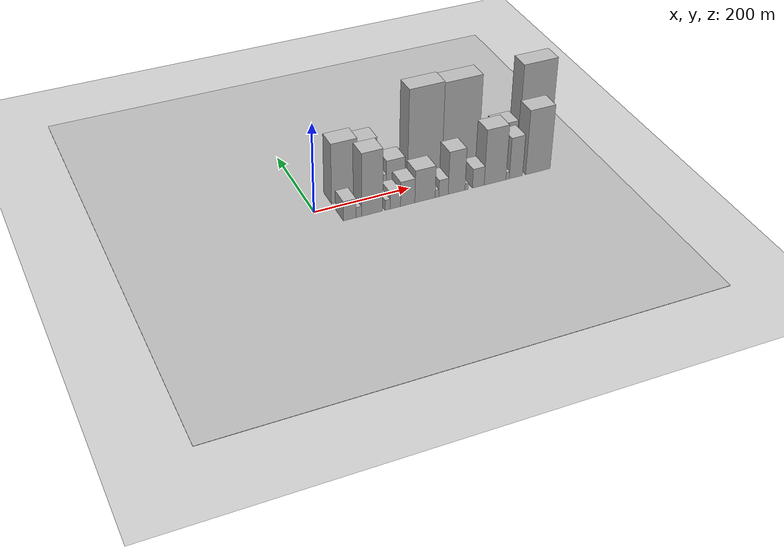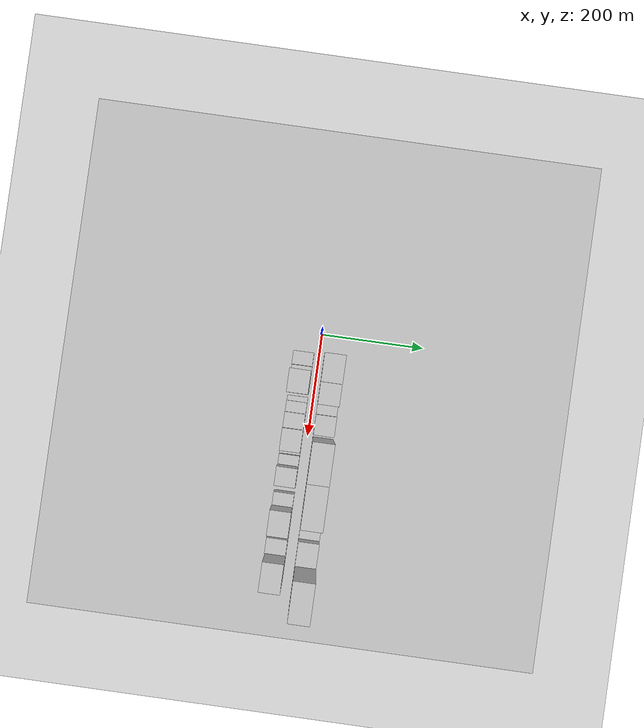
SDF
<?xml version="1.0" encoding="utf-8"?>

<sdf version="1.6">

   <world name="default">

      <gui fullscreen="0">

         <camera name="user_camera">

            <pose>-15 0 4.57585 0 0 0</pose>

            <view_controller>orbit</view_controller>

         </camera>

      </gui>

      <scene>

         <sky>

           <clouds>

             <speed>12</speed>

           </clouds>

         </sky>

         <ambient>0.4 0.4 0.4 1</ambient>

         <background>0.7 0.7 0.7 1</background>

         <shadows>1</shadows>

      </scene>

      <gravity>0 0 -9.8066</gravity>

      <magnetic_field>6e-06 2.3e-05 -4.2e-05</magnetic_field>

      <physics default="0" name="default_physics" type="ode">

         <ode>

            <solver>

               <type>quick</type>

               <iters>10</iters>

               <sor>1.0</sor>

               <use_dynamic_moi_rescaling>0</use_dynamic_moi_rescaling>

            </solver>

            <constraints>

               <cfm>0</cfm>

               <erp>0.2</erp>

               <contact_max_correcting_vel>100</contact_max_correcting_vel>

               <contact_surface_layer>0.001</contact_surface_layer>

            </constraints>

         </ode>

         <max_step_size>0.004</max_step_size>

         <real_time_factor>1</real_time_factor>

         <real_time_update_rate>250</real_time_update_rate>

      </physics>

      <light name="sun" type="directional">

         <cast_shadows>1</cast_shadows>

         <pose>0 0 10 0 0 0</pose>

         <diffuse>0.8 0.8 0.8 1</diffuse>

         <specular>0.2 0.2 0.2 1</specular>

         <attenuation>

            <range>1000</range>

            <constant>0.9</constant>

            <linear>0.01</linear>

            <quadratic>0.001</quadratic>

         </attenuation>

         <direction>-0.5 0.1 -0.9</direction>

      </light>

      <include>

         <name>ground_plane_1</name>

         <uri>model://HANNAS_ground_plane</uri>

         <pose>0 0 0  0 0 0</pose>

      </include>

      <include>

         <name>ground_plane_2</name>

         <uri>model://HANNAS_ground_plane</uri>

         <pose>100 0 0  0 0 0</pose>

      </include>

      <model name="building_1">

         <static>1</static>

         <pose frame="">66.9440 30.0000 0 0.000000 0.000000 1.570796</pose>

         <link name="link">

            <pose frame="">0 0 69.00 0 0 0</pose>

            <collision name="collision">

               <geometry>

                  <box>

                     <size>40.0000 53.8881 138.0000</size>

                  </box>

               </geometry>

               <max_contacts>10</max_contacts>

               <surface>

                  <contact>

                     <ode/>

                  </contact>

                  <bounce/>

                  <friction>

                     <torsional>

                        <ode/>

                     </torsional>

                     <ode/>

                  </friction>

               </surface>

            </collision>

            <visual name="visual">

               <cast_shadows>0</cast_shadows>

               <geometry>

                  <box>

                     <size>40.0000 53.8881 138.0000</size>

                  </box>

               </geometry>

               <material>

                  <script>

                     <uri>model://HANNAS_wall/materials/scripts</uri>

                     <uri>model://HANNAS_wall/materials/textures</uri>

                     <name>vrc/HANNAS_wall</name>

                  </script>

               </material>

            </visual>

            <self_collide>0</self_collide>

            <enable_wind>0</enable_wind>

            <kinematic>0</kinematic>

         </link>

      </model>

      <model name="building_2">

         <static>1</static>

         <pose frame="">114.7403 30.0000 0 0.000000 0.000000 1.570796</pose>

         <link name="link">

            <pose frame="">0 0 64.50 0 0 0</pose>

            <collision name="collision">

               <geometry>

                  <box>

                     <size>40.0000 41.7045 129.0000</size>

                  </box>

               </geometry>

               <max_contacts>10</max_contacts>

               <surface>

                  <contact>

                     <ode/>

                  </contact>

                  <bounce/>

                  <friction>

                     <torsional>

                        <ode/>

                     </torsional>

                     <ode/>

                  </friction>

               </surface>

            </collision>

            <visual name="visual">

               <cast_shadows>0</cast_shadows>

               <geometry>

                  <box>

                     <size>40.0000 41.7045 129.0000</size>

                  </box>

               </geometry>

               <material>

                  <script>

                     <uri>model://HANNAS_wall/materials/scripts</uri>

                     <uri>model://HANNAS_wall/materials/textures</uri>

                     <name>vrc/HANNAS_wall</name>

                  </script>

               </material>

            </visual>

            <self_collide>0</self_collide>

            <enable_wind>0</enable_wind>

            <kinematic>0</kinematic>

         </link>

      </model>

      <model name="building_3">

         <static>1</static>

         <pose frame="">145.5895 30.0000 0 0.000000 0.000000 1.570796</pose>

         <link name="link">

            <pose frame="">0 0 19.50 0 0 0</pose>

            <collision name="collision">

               <geometry>

                  <box>

                     <size>40.0000 19.9938 39.0000</size>

                  </box>

               </geometry>

               <max_contacts>10</max_contacts>

               <surface>

                  <contact>

                     <ode/>

                  </contact>

                  <bounce/>

                  <friction>

                     <torsional>

                        <ode/>

                     </torsional>

                     <ode/>

                  </friction>

               </surface>

            </collision>

            <visual name="visual">

               <cast_shadows>0</cast_shadows>

               <geometry>

                  <box>

                     <size>40.0000 19.9938 39.0000</size>

                  </box>

               </geometry>

               <material>

                  <script>

                     <uri>model://HANNAS_wall/materials/scripts</uri>

                     <uri>model://HANNAS_wall/materials/textures</uri>

                     <name>vrc/HANNAS_wall</name>

                  </script>

               </material>

            </visual>

            <self_collide>0</self_collide>

            <enable_wind>0</enable_wind>

            <kinematic>0</kinematic>

         </link>

      </model>

      <model name="building_4">

         <static>1</static>

         <pose frame="">175.2585 30.0000 0 0.000000 0.000000 1.570796</pose>

         <link name="link">

            <pose frame="">0 0 34.50 0 0 0</pose>

            <collision name="collision">

               <geometry>

                  <box>

                     <size>40.0000 39.3444 69.0000</size>

                  </box>

               </geometry>

               <max_contacts>10</max_contacts>

               <surface>

                  <contact>

                     <ode/>

                  </contact>

                  <bounce/>

                  <friction>

                     <torsional>

                        <ode/>

                     </torsional>

                     <ode/>

                  </friction>

               </surface>

            </collision>

            <visual name="visual">

               <cast_shadows>0</cast_shadows>

               <geometry>

                  <box>

                     <size>40.0000 39.3444 69.0000</size>

                  </box>

               </geometry>

               <material>

                  <script>

                     <uri>model://HANNAS_wall/materials/scripts</uri>

                     <uri>model://HANNAS_wall/materials/textures</uri>

                     <name>vrc/HANNAS_wall</name>

                  </script>

               </material>

            </visual>

            <self_collide>0</self_collide>

            <enable_wind>0</enable_wind>

            <kinematic>0</kinematic>

         </link>

      </model>

      <model name="building_5">

         <static>1</static>

         <pose frame="">238.2766 30.0000 0 0.000000 0.000000 1.570796</pose>

         <link name="link">

            <pose frame="">0 0 109.50 0 0 0</pose>

            <collision name="collision">

               <geometry>

                  <box>

                     <size>40.0000 74.6918 219.0000</size>

                  </box>

               </geometry>

               <max_contacts>10</max_contacts>

               <surface>

                  <contact>

                     <ode/>

                  </contact>

                  <bounce/>

                  <friction>

                     <torsional>

                        <ode/>

                     </torsional>

                     <ode/>

                  </friction>

               </surface>

            </collision>

            <visual name="visual">

               <cast_shadows>0</cast_shadows>

               <geometry>

                  <box>

                     <size>40.0000 74.6918 219.0000</size>

                  </box>

               </geometry>

               <material>

                  <script>

                     <uri>model://HANNAS_wall/materials/scripts</uri>

                     <uri>model://HANNAS_wall/materials/textures</uri>

                     <name>vrc/HANNAS_wall</name>

                  </script>

               </material>

            </visual>

            <self_collide>0</self_collide>

            <enable_wind>0</enable_wind>

            <kinematic>0</kinematic>

         </link>

      </model>

      <model name="building_6">

         <static>1</static>

         <pose frame="">316.1250 30.0000 0 0.000000 0.000000 1.570796</pose>

         <link name="link">

            <pose frame="">0 0 108.00 0 0 0</pose>

            <collision name="collision">

               <geometry>

                  <box>

                     <size>40.0000 81.0050 216.0000</size>

                  </box>

               </geometry>

               <max_contacts>10</max_contacts>

               <surface>

                  <contact>

                     <ode/>

                  </contact>

                  <bounce/>

                  <friction>

                     <torsional>

                        <ode/>

                     </torsional>

                     <ode/>

                  </friction>

               </surface>

            </collision>

            <visual name="visual">

               <cast_shadows>0</cast_shadows>

               <geometry>

                  <box>

                     <size>40.0000 81.0050 216.0000</size>

                  </box>

               </geometry>

               <material>

                  <script>

                     <uri>model://HANNAS_wall/materials/scripts</uri>

                     <uri>model://HANNAS_wall/materials/textures</uri>

                     <name>vrc/HANNAS_wall</name>

                  </script>

               </material>

            </visual>

            <self_collide>0</self_collide>

            <enable_wind>0</enable_wind>

            <kinematic>0</kinematic>

         </link>

      </model>

      <model name="building_7">

         <static>1</static>

         <pose frame="">380.4439 30.0000 0 0.000000 0.000000 1.570796</pose>

         <link name="link">

            <pose frame="">0 0 25.50 0 0 0</pose>

            <collision name="collision">

               <geometry>

                  <box>

                     <size>40.0000 29.6328 51.0000</size>

                  </box>

               </geometry>

               <max_contacts>10</max_contacts>

               <surface>

                  <contact>

                     <ode/>

                  </contact>

                  <bounce/>

                  <friction>

                     <torsional>

                        <ode/>

                     </torsional>

                     <ode/>

                  </friction>

               </surface>

            </collision>

            <visual name="visual">

               <cast_shadows>0</cast_shadows>

               <geometry>

                  <box>

                     <size>40.0000 29.6328 51.0000</size>

                  </box>

               </geometry>

               <material>

                  <script>

                     <uri>model://HANNAS_wall/materials/scripts</uri>

                     <uri>model://HANNAS_wall/materials/textures</uri>

                     <name>vrc/HANNAS_wall</name>

                  </script>

               </material>

            </visual>

            <self_collide>0</self_collide>

            <enable_wind>0</enable_wind>

            <kinematic>0</kinematic>

         </link>

      </model>

      <model name="building_8">

         <static>1</static>

         <pose frame="">418.5278 30.0000 0 0.000000 0.000000 1.570796</pose>

         <link name="link">

            <pose frame="">0 0 45.00 0 0 0</pose>

            <collision name="collision">

               <geometry>

                  <box>

                     <size>40.0000 46.5349 90.0000</size>

                  </box>

               </geometry>

               <max_contacts>10</max_contacts>

               <surface>

                  <contact>

                     <ode/>

                  </contact>

                  <bounce/>

                  <friction>

                     <torsional>

                        <ode/>

                     </torsional>

                     <ode/>

                  </friction>

               </surface>

            </collision>

            <visual name="visual">

               <cast_shadows>0</cast_shadows>

               <geometry>

                  <box>

                     <size>40.0000 46.5349 90.0000</size>

                  </box>

               </geometry>

               <material>

                  <script>

                     <uri>model://HANNAS_wall/materials/scripts</uri>

                     <uri>model://HANNAS_wall/materials/textures</uri>

                     <name>vrc/HANNAS_wall</name>

                  </script>

               </material>

            </visual>

            <self_collide>0</self_collide>

            <enable_wind>0</enable_wind>

            <kinematic>0</kinematic>

         </link>

      </model>

      <model name="building_9">

         <static>1</static>

         <pose frame="">483.3286 30.0000 0 0.000000 0.000000 1.570796</pose>

         <link name="link">

            <pose frame="">0 0 108.00 0 0 0</pose>

            <collision name="collision">

               <geometry>

                  <box>

                     <size>40.0000 75.0668 216.0000</size>

                  </box>

               </geometry>

               <max_contacts>10</max_contacts>

               <surface>

                  <contact>

                     <ode/>

                  </contact>

                  <bounce/>

                  <friction>

                     <torsional>

                        <ode/>

                     </torsional>

                     <ode/>

                  </friction>

               </surface>

            </collision>

            <visual name="visual">

               <cast_shadows>0</cast_shadows>

               <geometry>

                  <box>

                     <size>40.0000 75.0668 216.0000</size>

                  </box>

               </geometry>

               <material>

                  <script>

                     <uri>model://HANNAS_wall/materials/scripts</uri>

                     <uri>model://HANNAS_wall/materials/textures</uri>

                     <name>vrc/HANNAS_wall</name>

                  </script>

               </material>

            </visual>

            <self_collide>0</self_collide>

            <enable_wind>0</enable_wind>

            <kinematic>0</kinematic>

         </link>

      </model>

      <model name="building_10">

         <static>1</static>

         <pose frame="">53.2304 -30.0000 0 0.000000 0.000000 1.570796</pose>

         <link name="link">

            <pose frame="">0 0 22.50 0 0 0</pose>

            <collision name="collision">

               <geometry>

                  <box>

                     <size>40.0000 26.4608 45.0000</size>

                  </box>

               </geometry>

               <max_contacts>10</max_contacts>

               <surface>

                  <contact>

                     <ode/>

                  </contact>

                  <bounce/>

                  <friction>

                     <torsional>

                        <ode/>

                     </torsional>

                     <ode/>

                  </friction>

               </surface>

            </collision>

            <visual name="visual">

               <cast_shadows>0</cast_shadows>

               <geometry>

                  <box>

                     <size>40.0000 26.4608 45.0000</size>

                  </box>

               </geometry>

               <material>

                  <script>

                     <uri>model://HANNAS_wall/materials/scripts</uri>

                     <uri>model://HANNAS_wall/materials/textures</uri>

                     <name>vrc/HANNAS_wall</name>

                  </script>

               </material>

            </visual>

            <self_collide>0</self_collide>

            <enable_wind>0</enable_wind>

            <kinematic>0</kinematic>

         </link>

      </model>

      <model name="building_11">

         <static>1</static>

         <pose frame="">71.6783 -30.0000 0 0.000000 0.000000 1.570796</pose>

         <link name="link">

            <pose frame="">0 0 12.00 0 0 0</pose>

            <collision name="collision">

               <geometry>

                  <box>

                     <size>40.0000 10.4350 24.0000</size>

                  </box>

               </geometry>

               <max_contacts>10</max_contacts>

               <surface>

                  <contact>

                     <ode/>

                  </contact>

                  <bounce/>

                  <friction>

                     <torsional>

                        <ode/>

                     </torsional>

                     <ode/>

                  </friction>

               </surface>

            </collision>

            <visual name="visual">

               <cast_shadows>0</cast_shadows>

               <geometry>

                  <box>

                     <size>40.0000 10.4350 24.0000</size>

                  </box>

               </geometry>

               <material>

                  <script>

                     <uri>model://HANNAS_wall/materials/scripts</uri>

                     <uri>model://HANNAS_wall/materials/textures</uri>

                     <name>vrc/HANNAS_wall</name>

                  </script>

               </material>

            </visual>

            <self_collide>0</self_collide>

            <enable_wind>0</enable_wind>

            <kinematic>0</kinematic>

         </link>

      </model>

      <model name="building_12">

         <static>1</static>

         <pose frame="">99.0378 -30.0000 0 0.000000 0.000000 1.570796</pose>

         <link name="link">

            <pose frame="">0 0 72.00 0 0 0</pose>

            <collision name="collision">

               <geometry>

                  <box>

                     <size>40.0000 44.2841 144.0000</size>

                  </box>

               </geometry>

               <max_contacts>10</max_contacts>

               <surface>

                  <contact>

                     <ode/>

                  </contact>

                  <bounce/>

                  <friction>

                     <torsional>

                        <ode/>

                     </torsional>

                     <ode/>

                  </friction>

               </surface>

            </collision>

            <visual name="visual">

               <cast_shadows>0</cast_shadows>

               <geometry>

                  <box>

                     <size>40.0000 44.2841 144.0000</size>

                  </box>

               </geometry>

               <material>

                  <script>

                     <uri>model://HANNAS_wall/materials/scripts</uri>

                     <uri>model://HANNAS_wall/materials/textures</uri>

                     <name>vrc/HANNAS_wall</name>

                  </script>

               </material>

            </visual>

            <self_collide>0</self_collide>

            <enable_wind>0</enable_wind>

            <kinematic>0</kinematic>

         </link>

      </model>

      <model name="building_13">

         <static>1</static>

         <pose frame="">131.4482 -30.0000 0 0.000000 0.000000 1.570796</pose>

         <link name="link">

            <pose frame="">0 0 12.00 0 0 0</pose>

            <collision name="collision">

               <geometry>

                  <box>

                     <size>40.0000 10.5368 24.0000</size>

                  </box>

               </geometry>

               <max_contacts>10</max_contacts>

               <surface>

                  <contact>

                     <ode/>

                  </contact>

                  <bounce/>

                  <friction>

                     <torsional>

                        <ode/>

                     </torsional>

                     <ode/>

                  </friction>

               </surface>

            </collision>

            <visual name="visual">

               <cast_shadows>0</cast_shadows>

               <geometry>

                  <box>

                     <size>40.0000 10.5368 24.0000</size>

                  </box>

               </geometry>

               <material>

                  <script>

                     <uri>model://HANNAS_wall/materials/scripts</uri>

                     <uri>model://HANNAS_wall/materials/textures</uri>

                     <name>vrc/HANNAS_wall</name>

                  </script>

               </material>

            </visual>

            <self_collide>0</self_collide>

            <enable_wind>0</enable_wind>

            <kinematic>0</kinematic>

         </link>

      </model>

      <model name="building_14">

         <static>1</static>

         <pose frame="">147.6726 -30.0000 0 0.000000 0.000000 1.570796</pose>

         <link name="link">

            <pose frame="">0 0 19.50 0 0 0</pose>

            <collision name="collision">

               <geometry>

                  <box>

                     <size>40.0000 21.9119 39.0000</size>

                  </box>

               </geometry>

               <max_contacts>10</max_contacts>

               <surface>

                  <contact>

                     <ode/>

                  </contact>

                  <bounce/>

                  <friction>

                     <torsional>

                        <ode/>

                     </torsional>

                     <ode/>

                  </friction>

               </surface>

            </collision>

            <visual name="visual">

               <cast_shadows>0</cast_shadows>

               <geometry>

                  <box>

                     <size>40.0000 21.9119 39.0000</size>

                  </box>

               </geometry>

               <material>

                  <script>

                     <uri>model://HANNAS_wall/materials/scripts</uri>

                     <uri>model://HANNAS_wall/materials/textures</uri>

                     <name>vrc/HANNAS_wall</name>

                  </script>

               </material>

            </visual>

            <self_collide>0</self_collide>

            <enable_wind>0</enable_wind>

            <kinematic>0</kinematic>

         </link>

      </model>

      <model name="building_15">

         <static>1</static>

         <pose frame="">173.8205 -30.0000 0 0.000000 0.000000 1.570796</pose>

         <link name="link">

            <pose frame="">0 0 28.50 0 0 0</pose>

            <collision name="collision">

               <geometry>

                  <box>

                     <size>40.0000 30.3840 57.0000</size>

                  </box>

               </geometry>

               <max_contacts>10</max_contacts>

               <surface>

                  <contact>

                     <ode/>

                  </contact>

                  <bounce/>

                  <friction>

                     <torsional>

                        <ode/>

                     </torsional>

                     <ode/>

                  </friction>

               </surface>

            </collision>

            <visual name="visual">

               <cast_shadows>0</cast_shadows>

               <geometry>

                  <box>

                     <size>40.0000 30.3840 57.0000</size>

                  </box>

               </geometry>

               <material>

                  <script>

                     <uri>model://HANNAS_wall/materials/scripts</uri>

                     <uri>model://HANNAS_wall/materials/textures</uri>

                     <name>vrc/HANNAS_wall</name>

                  </script>

               </material>

            </visual>

            <self_collide>0</self_collide>

            <enable_wind>0</enable_wind>

            <kinematic>0</kinematic>

         </link>

      </model>

      <model name="building_16">

         <static>1</static>

         <pose frame="">210.7797 -30.0000 0 0.000000 0.000000 1.570796</pose>

         <link name="link">

            <pose frame="">0 0 37.50 0 0 0</pose>

            <collision name="collision">

               <geometry>

                  <box>

                     <size>40.0000 43.5342 75.0000</size>

                  </box>

               </geometry>

               <max_contacts>10</max_contacts>

               <surface>

                  <contact>

                     <ode/>

                  </contact>

                  <bounce/>

                  <friction>

                     <torsional>

                        <ode/>

                     </torsional>

                     <ode/>

                  </friction>

               </surface>

            </collision>

            <visual name="visual">

               <cast_shadows>0</cast_shadows>

               <geometry>

                  <box>

                     <size>40.0000 43.5342 75.0000</size>

                  </box>

               </geometry>

               <material>

                  <script>

                     <uri>model://HANNAS_wall/materials/scripts</uri>

                     <uri>model://HANNAS_wall/materials/textures</uri>

                     <name>vrc/HANNAS_wall</name>

                  </script>

               </material>

            </visual>

            <self_collide>0</self_collide>

            <enable_wind>0</enable_wind>

            <kinematic>0</kinematic>

         </link>

      </model>

      <model name="building_17">

         <static>1</static>

         <pose frame="">236.4005 -30.0000 0 0.000000 0.000000 1.570796</pose>

         <link name="link">

            <pose frame="">0 0 9.00 0 0 0</pose>

            <collision name="collision">

               <geometry>

                  <box>

                     <size>40.0000 7.7074 18.0000</size>

                  </box>

               </geometry>

               <max_contacts>10</max_contacts>

               <surface>

                  <contact>

                     <ode/>

                  </contact>

                  <bounce/>

                  <friction>

                     <torsional>

                        <ode/>

                     </torsional>

                     <ode/>

                  </friction>

               </surface>

            </collision>

            <visual name="visual">

               <cast_shadows>0</cast_shadows>

               <geometry>

                  <box>

                     <size>40.0000 7.7074 18.0000</size>

                  </box>

               </geometry>

               <material>

                  <script>

                     <uri>model://HANNAS_wall/materials/scripts</uri>

                     <uri>model://HANNAS_wall/materials/textures</uri>

                     <name>vrc/HANNAS_wall</name>

                  </script>

               </material>

            </visual>

            <self_collide>0</self_collide>

            <enable_wind>0</enable_wind>

            <kinematic>0</kinematic>

         </link>

      </model>

      <model name="building_18">

         <static>1</static>

         <pose frame="">250.4623 -30.0000 0 0.000000 0.000000 1.570796</pose>

         <link name="link">

            <pose frame="">0 0 19.50 0 0 0</pose>

            <collision name="collision">

               <geometry>

                  <box>

                     <size>40.0000 20.4161 39.0000</size>

                  </box>

               </geometry>

               <max_contacts>10</max_contacts>

               <surface>

                  <contact>

                     <ode/>

                  </contact>

                  <bounce/>

                  <friction>

                     <torsional>

                        <ode/>

                     </torsional>

                     <ode/>

                  </friction>

               </surface>

            </collision>

            <visual name="visual">

               <cast_shadows>0</cast_shadows>

               <geometry>

                  <box>

                     <size>40.0000 20.4161 39.0000</size>

                  </box>

               </geometry>

               <material>

                  <script>

                     <uri>model://HANNAS_wall/materials/scripts</uri>

                     <uri>model://HANNAS_wall/materials/textures</uri>

                     <name>vrc/HANNAS_wall</name>

                  </script>

               </material>

            </visual>

            <self_collide>0</self_collide>

            <enable_wind>0</enable_wind>

            <kinematic>0</kinematic>

         </link>

      </model>

      <model name="building_19">

         <static>1</static>

         <pose frame="">278.9108 -30.0000 0 0.000000 0.000000 1.570796</pose>

         <link name="link">

            <pose frame="">0 0 49.50 0 0 0</pose>

            <collision name="collision">

               <geometry>

                  <box>

                     <size>40.0000 36.4809 99.0000</size>

                  </box>

               </geometry>

               <max_contacts>10</max_contacts>

               <surface>

                  <contact>

                     <ode/>

                  </contact>

                  <bounce/>

                  <friction>

                     <torsional>

                        <ode/>

                     </torsional>

                     <ode/>

                  </friction>

               </surface>

            </collision>

            <visual name="visual">

               <cast_shadows>0</cast_shadows>

               <geometry>

                  <box>

                     <size>40.0000 36.4809 99.0000</size>

                  </box>

               </geometry>

               <material>

                  <script>

                     <uri>model://HANNAS_wall/materials/scripts</uri>

                     <uri>model://HANNAS_wall/materials/textures</uri>

                     <name>vrc/HANNAS_wall</name>

                  </script>

               </material>

            </visual>

            <self_collide>0</self_collide>

            <enable_wind>0</enable_wind>

            <kinematic>0</kinematic>

         </link>

      </model>

      <model name="building_20">

         <static>1</static>

         <pose frame="">300.8193 -30.0000 0 0.000000 0.000000 1.570796</pose>

         <link name="link">

            <pose frame="">0 0 7.50 0 0 0</pose>

            <collision name="collision">

               <geometry>

                  <box>

                     <size>40.0000 7.3362 15.0000</size>

                  </box>

               </geometry>

               <max_contacts>10</max_contacts>

               <surface>

                  <contact>

                     <ode/>

                  </contact>

                  <bounce/>

                  <friction>

                     <torsional>

                        <ode/>

                     </torsional>

                     <ode/>

                  </friction>

               </surface>

            </collision>

            <visual name="visual">

               <cast_shadows>0</cast_shadows>

               <geometry>

                  <box>

                     <size>40.0000 7.3362 15.0000</size>

                  </box>

               </geometry>

               <material>

                  <script>

                     <uri>model://HANNAS_wall/materials/scripts</uri>

                     <uri>model://HANNAS_wall/materials/textures</uri>

                     <name>vrc/HANNAS_wall</name>

                  </script>

               </material>

            </visual>

            <self_collide>0</self_collide>

            <enable_wind>0</enable_wind>

            <kinematic>0</kinematic>

         </link>

      </model>

      <model name="building_21">

         <static>1</static>

         <pose frame="">326.4053 -30.0000 0 0.000000 0.000000 1.570796</pose>

         <link name="link">

            <pose frame="">0 0 22.50 0 0 0</pose>

            <collision name="collision">

               <geometry>

                  <box>

                     <size>40.0000 25.8357 45.0000</size>

                  </box>

               </geometry>

               <max_contacts>10</max_contacts>

               <surface>

                  <contact>

                     <ode/>

                  </contact>

                  <bounce/>

                  <friction>

                     <torsional>

                        <ode/>

                     </torsional>

                     <ode/>

                  </friction>

               </surface>

            </collision>

            <visual name="visual">

               <cast_shadows>0</cast_shadows>

               <geometry>

                  <box>

                     <size>40.0000 25.8357 45.0000</size>

                  </box>

               </geometry>

               <material>

                  <script>

                     <uri>model://HANNAS_wall/materials/scripts</uri>

                     <uri>model://HANNAS_wall/materials/textures</uri>

                     <name>vrc/HANNAS_wall</name>

                  </script>

               </material>

            </visual>

            <self_collide>0</self_collide>

            <enable_wind>0</enable_wind>

            <kinematic>0</kinematic>

         </link>

      </model>

      <model name="building_22">

         <static>1</static>

         <pose frame="">363.4138 -30.0000 0 0.000000 0.000000 1.570796</pose>

         <link name="link">

            <pose frame="">0 0 64.50 0 0 0</pose>

            <collision name="collision">

               <geometry>

                  <box>

                     <size>40.0000 48.1813 129.0000</size>

                  </box>

               </geometry>

               <max_contacts>10</max_contacts>

               <surface>

                  <contact>

                     <ode/>

                  </contact>

                  <bounce/>

                  <friction>

                     <torsional>

                        <ode/>

                     </torsional>

                     <ode/>

                  </friction>

               </surface>

            </collision>

            <visual name="visual">

               <cast_shadows>0</cast_shadows>

               <geometry>

                  <box>

                     <size>40.0000 48.1813 129.0000</size>

                  </box>

               </geometry>

               <material>

                  <script>

                     <uri>model://HANNAS_wall/materials/scripts</uri>

                     <uri>model://HANNAS_wall/materials/textures</uri>

                     <name>vrc/HANNAS_wall</name>

                  </script>

               </material>

            </visual>

            <self_collide>0</self_collide>

            <enable_wind>0</enable_wind>

            <kinematic>0</kinematic>

         </link>

      </model>

      <model name="building_23">

         <static>1</static>

         <pose frame="">391.2471 -30.0000 0 0.000000 0.000000 1.570796</pose>

         <link name="link">

            <pose frame="">0 0 9.00 0 0 0</pose>

            <collision name="collision">

               <geometry>

                  <box>

                     <size>40.0000 7.4853 18.0000</size>

                  </box>

               </geometry>

               <max_contacts>10</max_contacts>

               <surface>

                  <contact>

                     <ode/>

                  </contact>

                  <bounce/>

                  <friction>

                     <torsional>

                        <ode/>

                     </torsional>

                     <ode/>

                  </friction>

               </surface>

            </collision>

            <visual name="visual">

               <cast_shadows>0</cast_shadows>

               <geometry>

                  <box>

                     <size>40.0000 7.4853 18.0000</size>

                  </box>

               </geometry>

               <material>

                  <script>

                     <uri>model://HANNAS_wall/materials/scripts</uri>

                     <uri>model://HANNAS_wall/materials/textures</uri>

                     <name>vrc/HANNAS_wall</name>

                  </script>

               </material>

            </visual>

            <self_collide>0</self_collide>

            <enable_wind>0</enable_wind>

            <kinematic>0</kinematic>

         </link>

      </model>

      <model name="building_24">

         <static>1</static>

         <pose frame="">409.8672 -30.0000 0 0.000000 0.000000 1.570796</pose>

         <link name="link">

            <pose frame="">0 0 48.00 0 0 0</pose>

            <collision name="collision">

               <geometry>

                  <box>

                     <size>40.0000 29.7549 96.0000</size>

                  </box>

               </geometry>

               <max_contacts>10</max_contacts>

               <surface>

                  <contact>

                     <ode/>

                  </contact>

                  <bounce/>

                  <friction>

                     <torsional>

                        <ode/>

                     </torsional>

                     <ode/>

                  </friction>

               </surface>

            </collision>

            <visual name="visual">

               <cast_shadows>0</cast_shadows>

               <geometry>

                  <box>

                     <size>40.0000 29.7549 96.0000</size>

                  </box>

               </geometry>

               <material>

                  <script>

                     <uri>model://HANNAS_wall/materials/scripts</uri>

                     <uri>model://HANNAS_wall/materials/textures</uri>

                     <name>vrc/HANNAS_wall</name>

                  </script>

               </material>

            </visual>

            <self_collide>0</self_collide>

            <enable_wind>0</enable_wind>

            <kinematic>0</kinematic>

         </link>

      </model>

      <model name="building_25">

         <static>1</static>

         <pose frame="">459.4814 -30.0000 0 0.000000 0.000000 1.570796</pose>

         <link name="link">

            <pose frame="">0 0 75.00 0 0 0</pose>

            <collision name="collision">

               <geometry>

                  <box>

                     <size>40.0000 55.4733 150.0000</size>

                  </box>

               </geometry>

               <max_contacts>10</max_contacts>

               <surface>

                  <contact>

                     <ode/>

                  </contact>

                  <bounce/>

                  <friction>

                     <torsional>

                        <ode/>

                     </torsional>

                     <ode/>

                  </friction>

               </surface>

            </collision>

            <visual name="visual">

               <cast_shadows>0</cast_shadows>

               <geometry>

                  <box>

                     <size>40.0000 55.4733 150.0000</size>

                  </box>

               </geometry>

               <material>

                  <script>

                     <uri>model://HANNAS_wall/materials/scripts</uri>

                     <uri>model://HANNAS_wall/materials/textures</uri>

                     <name>vrc/HANNAS_wall</name>

                  </script>

               </material>

            </visual>

            <self_collide>0</self_collide>

            <enable_wind>0</enable_wind>

            <kinematic>0</kinematic>

         </link>

      </model>

   </world>

</sdf>

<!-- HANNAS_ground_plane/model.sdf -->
<sdf version="1.4">
<model name="HANNAS_ground_plane">
  <static>true</static>
    <link name="link">
      <collision name="collision">
        <geometry>
          <plane>
            <normal>0 0 1</normal>
            <size>1000 1000</size>
          </plane>
        </geometry>
        <surface>
          <friction>
            <ode>
              <mu>100</mu>
              <mu2>50</mu2>
            </ode>
          </friction>
        </surface>
      </collision>
      <visual name="visual">
        <cast_shadows>false</cast_shadows>
        <geometry>
          <plane>
            <normal>0 0 1</normal>
            <size>1000 1000</size>
          </plane>
        </geometry>
        <material>
          <script>
            <uri>model://HANNAS_ground_plane/materials/scripts/HANNAS_ground_plane.material</uri>
	    <uri>model://HANNAS_ground_plane/materials/textures</uri>
            <name>HANNASGroundPlane/Image</name>
          </script>
        </material>
      </visual>
    </link>
  </model>
</sdf>
